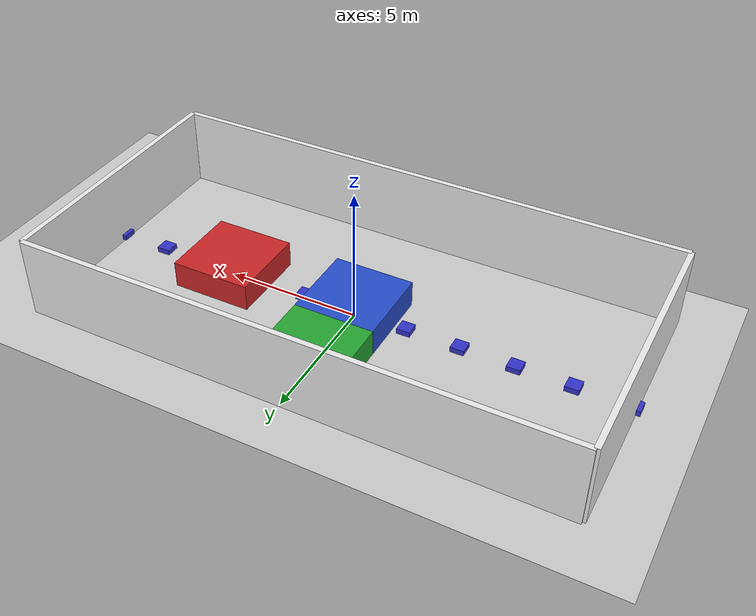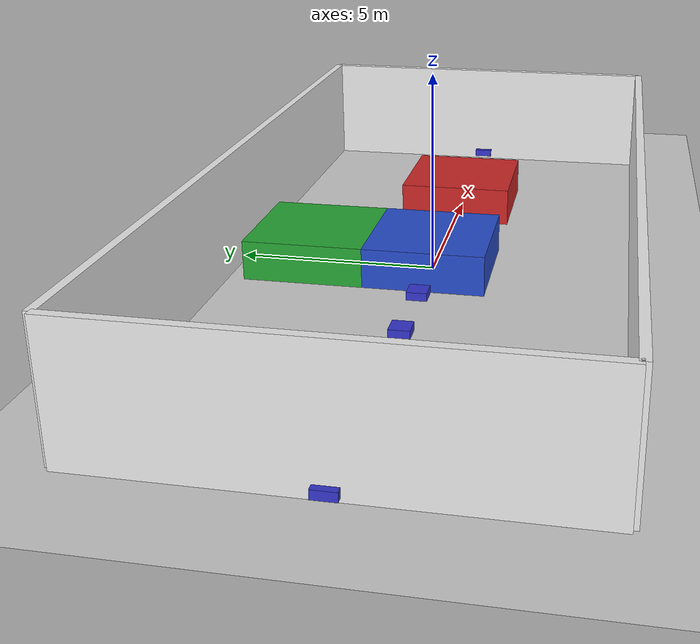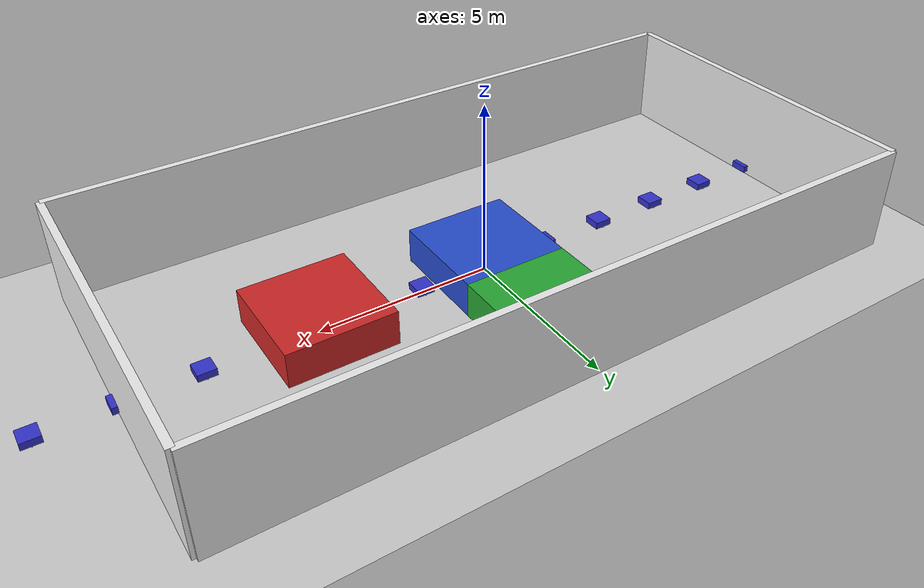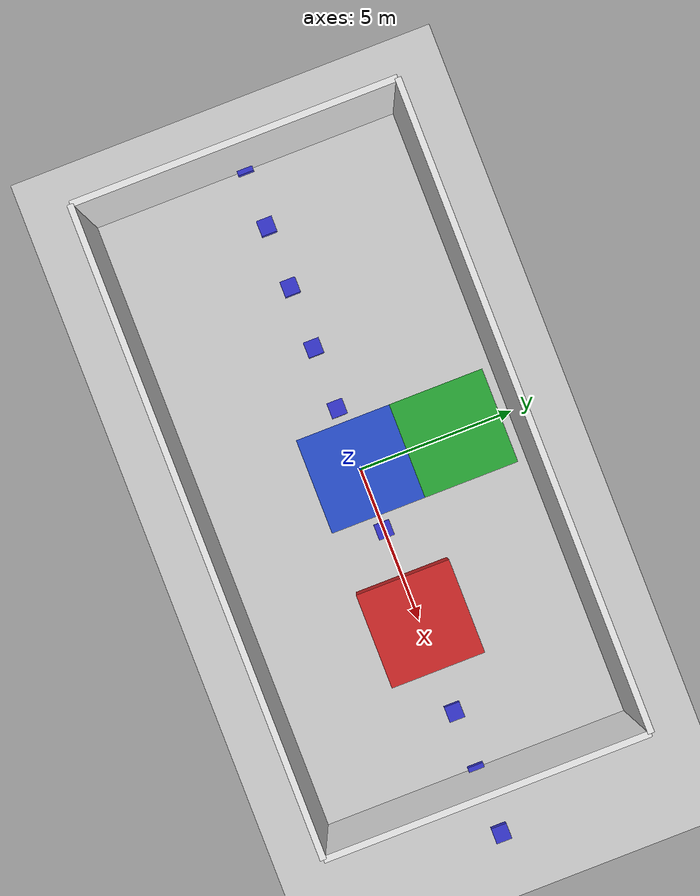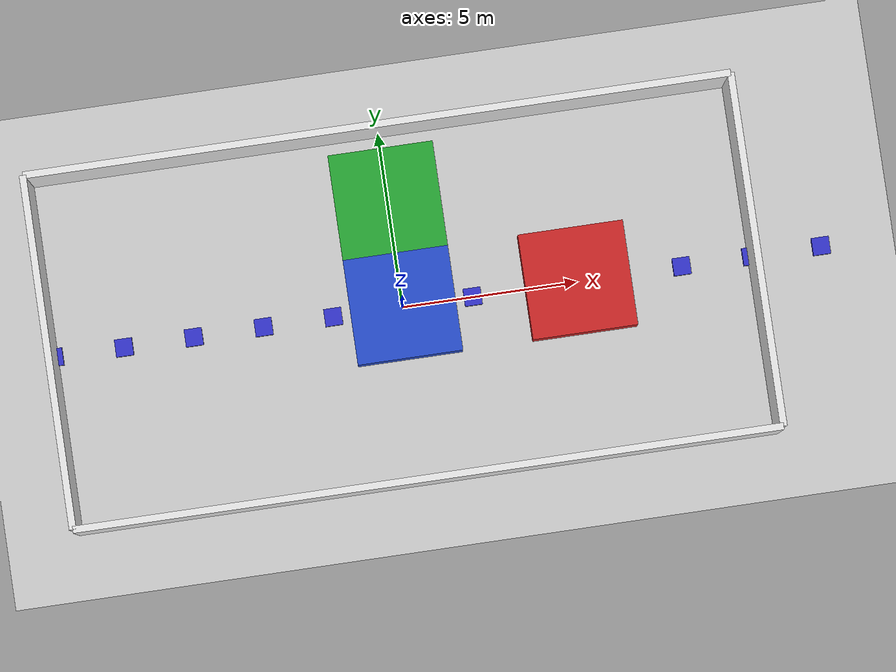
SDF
<?xml version="1.0"?>
<sdf version="1.6">
  <world name="hospital_world">
    <physics name="default_physics" default="0" type="ode">
      <gravity>0 0 -9.80665</gravity>
      <ode>
        <solver>
          <type>quick</type>
          <iters>10</iters>
          <sor>1.3</sor>
          <use_dynamic_moi_rescaling>1</use_dynamic_moi_rescaling>
        </solver>
        <constraints>
          <cfm>0</cfm>
          <erp>0.2</erp>
          <contact_max_correcting_vel>100</contact_max_correcting_vel>
          <contact_surface_layer>0.001</contact_surface_layer>
        </constraints>
      </ode>
      <max_step_size>0.001</max_step_size>
      <real_time_factor>1</real_time_factor>
      <real_time_update_rate>1000</real_time_update_rate>
    </physics>

    <scene>
      <ambient>0.4 0.4 0.4 1</ambient>
      <background>0.7 0.7 0.7 1</background>
      <shadows>true</shadows>
    </scene>

    <light name="sun" type="directional">
      <cast_shadows>true</cast_shadows>
      <pose>0 0 10 0 0 0</pose>
      <diffuse>0.8 0.8 0.8 1</diffuse>
      <specular>0.2 0.2 0.2 1</specular>
      <attenuation>
        <range>1000</range>
        <constant>0.9</constant>
        <linear>0.01</linear>
        <quadratic>0.001</quadratic>
      </attenuation>
      <direction>-0.5 0.1 -0.9</direction>
    </light>

    <!-- Ground plane -->
    <model name="ground_plane">
      <static>true</static>
      <link name="link">
        <collision name="collision">
          <geometry>
            <plane>
              <normal>0 0 1</normal>
              <size>100 100</size>
            </plane>
          </geometry>
        </collision>
        <visual name="visual">
          <geometry>
            <plane>
              <normal>0 0 1</normal>
              <size>100 100</size>
            </plane>
          </geometry>
          <material>
            <script>
              <uri>file://media/materials/scripts/gazebo.material</uri>
              <name>Gazebo/Grey</name>
            </script>
          </material>
        </visual>
      </link>
    </model>

    <!-- Hospital walls and rooms -->
    <!-- Lobby -->
    <model name="lobby_wall_north">
      <static>true</static>
      <pose>0 5 1.5 0 0 0</pose>
      <link name="link">
        <collision name="collision">
          <geometry>
            <box>
              <size>20 0.2 3</size>
            </box>
          </geometry>
        </collision>
        <visual name="visual">
          <geometry>
            <box>
              <size>20 0.2 3</size>
            </box>
          </geometry>
          <material>
            <script>
              <uri>file://media/materials/scripts/gazebo.material</uri>
              <name>Gazebo/White</name>
            </script>
          </material>
        </visual>
      </link>
    </model>

    <model name="lobby_wall_south">
      <static>true</static>
      <pose>0 -5 1.5 0 0 0</pose>
      <link name="link">
        <collision name="collision">
          <geometry>
            <box>
              <size>20 0.2 3</size>
            </box>
          </geometry>
        </collision>
        <visual name="visual">
          <geometry>
            <box>
              <size>20 0.2 3</size>
            </box>
          </geometry>
          <material>
            <script>
              <uri>file://media/materials/scripts/gazebo.material</uri>
              <name>Gazebo/White</name>
            </script>
          </material>
        </visual>
      </link>
    </model>

    <model name="lobby_wall_east">
      <static>true</static>
      <pose>10 0 1.5 0 0 0</pose>
      <link name="link">
        <collision name="collision">
          <geometry>
            <box>
              <size>0.2 10 3</size>
            </box>
          </geometry>
        </collision>
        <visual name="visual">
          <geometry>
            <box>
              <size>0.2 10 3</size>
            </box>
          </geometry>
          <material>
            <script>
              <uri>file://media/materials/scripts/gazebo.material</uri>
              <name>Gazebo/White</name>
            </script>
          </material>
        </visual>
      </link>
    </model>

    <model name="lobby_wall_west">
      <static>true</static>
      <pose>-10 0 1.5 0 0 0</pose>
      <link name="link">
        <collision name="collision">
          <geometry>
            <box>
              <size>0.2 10 3</size>
            </box>
          </geometry>
        </collision>
        <visual name="visual">
          <geometry>
            <box>
              <size>0.2 10 3</size>
            </box>
          </geometry>
          <material>
            <script>
              <uri>file://media/materials/scripts/gazebo.material</uri>
              <name>Gazebo/White</name>
            </script>
          </material>
        </visual>
      </link>
    </model>

    <!-- Nurse Station -->
    <model name="nurse_station">
      <static>true</static>
      <pose>0 0 0.5 0 0 0</pose>
      <link name="link">
        <collision name="collision">
          <geometry>
            <box>
              <size>3 3 1</size>
            </box>
          </geometry>
        </collision>
        <visual name="visual">
          <geometry>
            <box>
              <size>3 3 1</size>
            </box>
          </geometry>
          <material>
            <script>
              <uri>file://media/materials/scripts/gazebo.material</uri>
              <name>Gazebo/Blue</name>
            </script>
          </material>
        </visual>
      </link>
    </model>

    <!-- ER -->
    <model name="er_room">
      <static>true</static>
      <pose>5 0 0.5 0 0 0</pose>
      <link name="link">
        <collision name="collision">
          <geometry>
            <box>
              <size>3 3 1</size>
            </box>
          </geometry>
        </collision>
        <visual name="visual">
          <geometry>
            <box>
              <size>3 3 1</size>
            </box>
          </geometry>
          <material>
            <script>
              <uri>file://media/materials/scripts/gazebo.material</uri>
              <name>Gazebo/Red</name>
            </script>
          </material>
        </visual>
      </link>
    </model>

    <!-- Ward A -->
    <model name="ward_a">
      <static>true</static>
      <pose>0 3 0.5 0 0 0</pose>
      <link name="link">
        <collision name="collision">
          <geometry>
            <box>
              <size>3 3 1</size>
            </box>
          </geometry>
        </collision>
        <visual name="visual">
          <geometry>
            <box>
              <size>3 3 1</size>
            </box>
          </geometry>
          <material>
            <script>
              <uri>file://media/materials/scripts/gazebo.material</uri>
              <name>Gazebo/Green</name>
            </script>
          </material>
        </visual>
      </link>
    </model>

    <!-- Include robot models with specializations -->
    <!-- Delivery Robots -->
    <include>
      <uri>model://hospital_robot</uri>
      <name>delivery_1</name>
      <pose>0 0 0.1 0 0 0</pose>
    </include>

    <include>
      <uri>model://hospital_robot</uri>
      <name>delivery_2</name>
      <pose>2 0 0.1 0 0 0</pose>
    </include>

    <include>
      <uri>model://hospital_robot</uri>
      <name>delivery_3</name>
      <pose>-2 0 0.1 0 0 0</pose>
    </include>

    <!-- Cleaning Robots -->
    <include>
      <uri>model://hospital_robot</uri>
      <name>cleaning_1</name>
      <pose>4 0 0.1 0 0 0</pose>
    </include>

    <include>
      <uri>model://hospital_robot</uri>
      <name>cleaning_2</name>
      <pose>-4 0 0.1 0 0 0</pose>
    </include>

    <!-- Patient Mover Robots -->
    <include>
      <uri>model://hospital_robot</uri>
      <name>patient_mover_1</name>
      <pose>6 0 0.1 0 0 0</pose>
    </include>

    <include>
      <uri>model://hospital_robot</uri>
      <name>patient_mover_2</name>
      <pose>-6 0 0.1 0 0 0</pose>
    </include>

    <!-- Supply & Lab Robots -->
    <include>
      <uri>model://hospital_robot</uri>
      <name>heavy_supply_1</name>
      <pose>8 0 0.1 0 0 0</pose>
    </include>

    <include>
      <uri>model://hospital_robot</uri>
      <name>lab_courier_1</name>
      <pose>-8 0 0.1 0 0 0</pose>
    </include>

    <!-- Emergency Response & General Robots -->
    <include>
      <uri>model://hospital_robot</uri>
      <name>emergency_1</name>
      <pose>10 0 0.1 0 0 0</pose>
    </include>

    <include>
      <uri>model://hospital_robot</uri>
      <name>general_1</name>
      <pose>-10 0 0.1 0 0 0</pose>
    </include>

    <include>
      <uri>model://hospital_robot</uri>
      <name>general_2</name>
      <pose>12 0 0.1 0 0 0</pose>
    </include>

  </world>
</sdf>

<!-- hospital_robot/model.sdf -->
<sdf version="1.6">
  <model name="hospital_robot">
    <link name="base_link">
      <pose>0 0 0.1 0 0 0</pose>
      <visual name="visual">
        <geometry>
          <box>
            <size>0.5 0.5 0.2</size>
          </box>
        </geometry>
        <material>
          <ambient>0.2 0.2 0.8 1.0</ambient>
          <diffuse>0.2 0.2 0.8 1.0</diffuse>
        </material>
      </visual>
      <collision name="collision">
        <geometry>
          <box>
            <size>0.5 0.5 0.2</size>
          </box>
        </geometry>
      </collision>
      <inertial>
        <mass>5.0</mass>
        <inertia>
          <ixx>0.1</ixx>
          <ixy>0</ixy>
          <ixz>0</ixz>
          <iyy>0.1</iyy>
          <iyz>0</iyz>
          <izz>0.1</izz>
        </inertia>
      </inertial>
    </link>

    <link name="wheel_left">
      <pose>0 0.2 0 0 1.5708 0</pose>
      <visual name="visual">
        <geometry>
          <cylinder>
            <radius>0.05</radius>
            <length>0.02</length>
          </cylinder>
        </geometry>
        <material>
          <ambient>0.1 0.1 0.1 1.0</ambient>
          <diffuse>0.1 0.1 0.1 1.0</diffuse>
        </material>
      </visual>
      <collision name="collision">
        <geometry>
          <cylinder>
            <radius>0.05</radius>
            <length>0.02</length>
          </cylinder>
        </geometry>
      </collision>
      <inertial>
        <mass>0.5</mass>
        <inertia>
          <ixx>0.001</ixx>
          <ixy>0</ixy>
          <ixz>0</ixz>
          <iyy>0.001</iyy>
          <iyz>0</iyz>
          <izz>0.001</izz>
        </inertia>
      </inertial>
    </link>

    <link name="wheel_right">
      <pose>0 -0.2 0 0 1.5708 0</pose>
      <visual name="visual">
        <geometry>
          <cylinder>
            <radius>0.05</radius>
            <length>0.02</length>
          </cylinder>
        </geometry>
        <material>
          <ambient>0.1 0.1 0.1 1.0</ambient>
          <diffuse>0.1 0.1 0.1 1.0</diffuse>
        </material>
      </visual>
      <collision name="collision">
        <geometry>
          <cylinder>
            <radius>0.05</radius>
            <length>0.02</length>
          </cylinder>
        </geometry>
      </collision>
      <inertial>
        <mass>0.5</mass>
        <inertia>
          <ixx>0.001</ixx>
          <ixy>0</ixy>
          <ixz>0</ixz>
          <iyy>0.001</iyy>
          <iyz>0</iyz>
          <izz>0.001</izz>
        </inertia>
      </inertial>
    </link>

    <joint name="base_to_wheel_left" type="revolute">
      <parent>base_link</parent>
      <child>wheel_left</child>
      <axis>
        <xyz>0 1 0</xyz>
        <limit>
          <lower>-1e+16</lower>
          <upper>1e+16</upper>
        </limit>
      </axis>
    </joint>

    <joint name="base_to_wheel_right" type="revolute">
      <parent>base_link</parent>
      <child>wheel_right</child>
      <axis>
        <xyz>0 1 0</xyz>
        <limit>
          <lower>-1e+16</lower>
          <upper>1e+16</upper>
        </limit>
      </axis>
    </joint>

    <link name="laser_link">
      <pose>0.2 0 0.15 0 0 0</pose>
      <visual name="visual">
        <geometry>
          <cylinder>
            <radius>0.02</radius>
            <length>0.05</length>
          </cylinder>
        </geometry>
        <material>
          <ambient>0.5 0.5 0.5 1.0</ambient>
          <diffuse>0.5 0.5 0.5 1.0</diffuse>
        </material>
      </visual>
      <collision name="collision">
        <geometry>
          <cylinder>
            <radius>0.02</radius>
            <length>0.05</length>
          </cylinder>
        </geometry>
      </collision>
      <inertial>
        <mass>0.1</mass>
        <inertia>
          <ixx>0.0001</ixx>
          <ixy>0</ixy>
          <ixz>0</ixz>
          <iyy>0.0001</iyy>
          <iyz>0</iyz>
          <izz>0.0001</izz>
        </inertia>
      </inertial>
    </link>

    <joint name="base_to_laser" type="fixed">
      <parent>base_link</parent>
      <child>laser_link</child>
      <pose>0.2 0 0.15 0 0 0</pose>
    </joint>

    <plugin name="gz::sim::systems::DiffDrive" filename="libgz-sim8-diff-drive-system.so">
      <left_joint>base_to_wheel_left</left_joint>
      <right_joint>base_to_wheel_right</right_joint>
      <wheel_separation>0.4</wheel_separation>
      <wheel_radius>0.05</wheel_radius>
      <topic>cmd_vel</topic>
      <odom_topic>odom</odom_topic>
      <frame_id>odom</frame_id>
      <child_frame_id>base_link</child_frame_id>
    </plugin>

    <plugin name="gz::sim::systems::Sensors" filename="libgz-sim8-sensors-system.so">
      <topic>scan</topic>
      <frame_id>laser_link</frame_id>
      <update_rate>10</update_rate>
      <ray>
        <scan>
          <horizontal>
            <samples>360</samples>
            <resolution>1</resolution>
            <min_angle>-3.14159</min_angle>
            <max_angle>3.14159</max_angle>
          </horizontal>
        </scan>
        <range>
          <min>0.08</min>
          <max>10.0</max>
          <resolution>0.01</resolution>
        </range>
      </ray>
    </plugin>
  </model>
</sdf>
